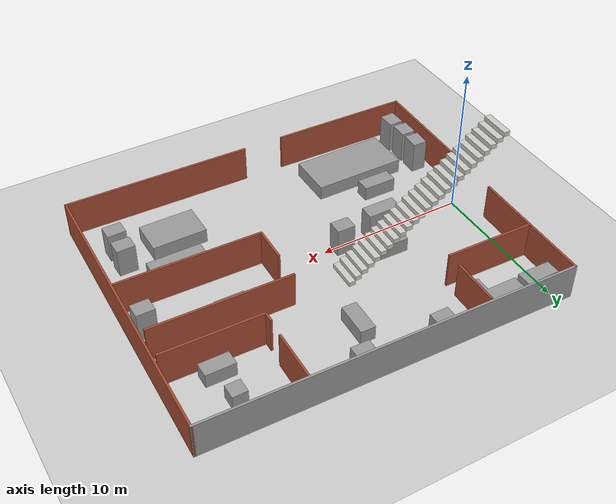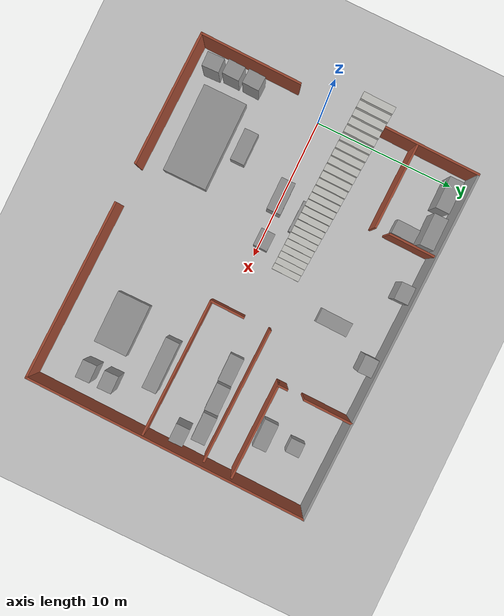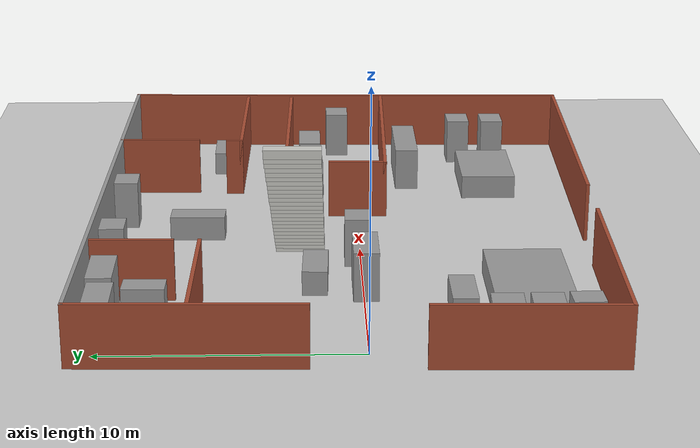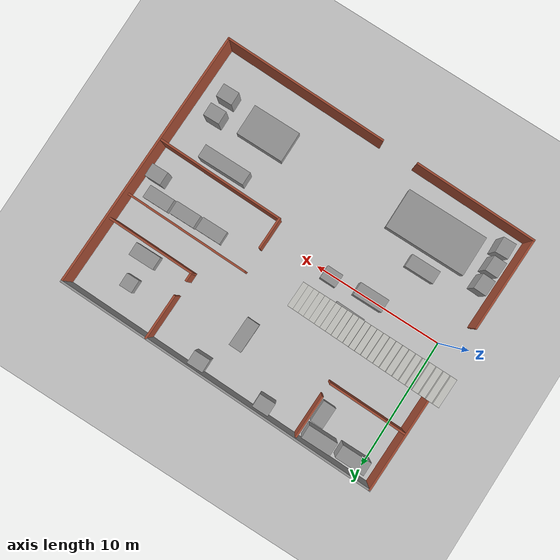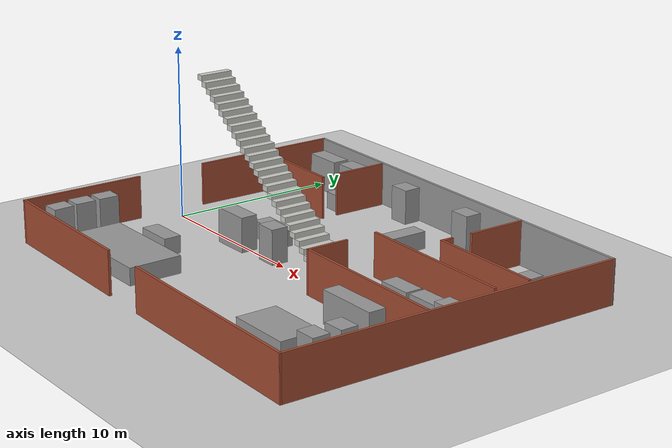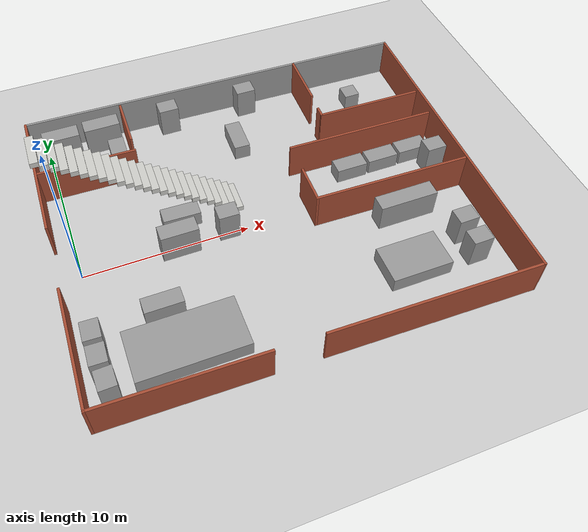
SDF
<sdf version="1.6">
 <world name="default">
  <light name="sun" type="directional">
   <pose>0 0 10 0 -0 0</pose>
   <diffuse>0.8 0.8 0.8 1</diffuse>
   <specular>0.2 0.2 0.2 1</specular>
   <attenuation>
    <range>1000</range>
    <constant>0.9</constant>
    <linear>0.01</linear>
    <quadratic>0.001</quadratic>
   </attenuation>
   <direction>-0.5 0.1 -0.9</direction>
  </light>
  <model name="ground_plane">
   <static>1</static>
   <link name="link">
    <collision name="collision">
     <geometry><plane><normal>0 0 1</normal><size>100 100</size></plane></geometry>
     <surface><friction><ode><mu>100</mu><mu2>50</mu2></ode></friction></surface>
    </collision>
    <visual name="visual">
     <cast_shadows>0</cast_shadows>
     <geometry><plane><normal>0 0 1</normal><size>100 100</size></plane></geometry>
     <material>
      <script><uri>file://media/materials/scripts/gazebo.material</uri><name>Gazebo/Grey</name></script>
     </material>
    </visual>
   </link>
  </model>
  <gravity>0 0 -9.8</gravity>
  <magnetic_field>6e-06 2.3e-05 -4.2e-05</magnetic_field>
  <atmosphere type="adiabatic"/>
  <physics name="default_physics" default="0" type="ode">
   <max_step_size>0.001</max_step_size>
   <real_time_factor>1</real_time_factor>
   <real_time_update_rate>1000</real_time_update_rate>
  </physics>
  <scene><ambient>0.4 0.4 0.4 1</ambient><background>0.7 0.7 0.7 1</background><shadows>1</shadows></scene>
  <spherical_coordinates>
   <surface_model>EARTH_WGS84</surface_model>
   <latitude_deg>0</latitude_deg>
   <longitude_deg>0</longitude_deg>
   <elevation>0</elevation>
   <heading_deg>0</heading_deg>
  </spherical_coordinates>
  <model name="CIMA_LAB">
   <pose>11.2808 0.528104 0 0 0 -1.59296</pose>
   <link name="Stairs_2">
    <visual name="Stairs_2_Visual_0">
     <pose>-1.90803 -1.27666 0.16 0 -0 0</pose>
     <geometry><box><size>2 0.44 0.32</size></box></geometry>
     <material>
      <script><uri>file://media/materials/scripts/gazebo.material</uri><name>Gazebo/CeilingTiled</name></script>
      <ambient>0.760784 0.662745 0.627451 1</ambient>
     </material>
     <meta><layer>0</layer></meta>
    </visual>
    <collision name="Stairs_2_Collision_0">
     <geometry><box><size>2 0.44 0.32</size></box></geometry>
     <pose>-1.90803 -1.27666 0.16 0 -0 0</pose>
    </collision>
    <visual name="Stairs_2_Visual_1">
     <pose>-1.90803 -1.71666 0.48 0 -0 0</pose>
     <geometry><box><size>2 0.44 0.32</size></box></geometry>
     <material>
      <script><uri>file://media/materials/scripts/gazebo.material</uri><name>Gazebo/CeilingTiled</name></script>
      <ambient>0.760784 0.662745 0.627451 1</ambient>
     </material>
     <meta><layer>0</layer></meta>
    </visual>
    <collision name="Stairs_2_Collision_1">
     <geometry><box><size>2 0.44 0.32</size></box></geometry>
     <pose>-1.90803 -1.71666 0.48 0 -0 0</pose>
    </collision>
    <visual name="Stairs_2_Visual_2">
     <pose>-1.90803 -2.15666 0.8 0 -0 0</pose>
     <geometry><box><size>2 0.44 0.32</size></box></geometry>
     <material>
      <script><uri>file://media/materials/scripts/gazebo.material</uri><name>Gazebo/CeilingTiled</name></script>
      <ambient>0.760784 0.662745 0.627451 1</ambient>
     </material>
     <meta><layer>0</layer></meta>
    </visual>
    <collision name="Stairs_2_Collision_2">
     <geometry><box><size>2 0.44 0.32</size></box></geometry>
     <pose>-1.90803 -2.15666 0.8 0 -0 0</pose>
    </collision>
    <visual name="Stairs_2_Visual_3">
     <pose>-1.90803 -2.59666 1.12 0 -0 0</pose>
     <geometry><box><size>2 0.44 0.32</size></box></geometry>
     <material>
      <script><uri>file://media/materials/scripts/gazebo.material</uri><name>Gazebo/CeilingTiled</name></script>
      <ambient>0.760784 0.662745 0.627451 1</ambient>
     </material>
     <meta><layer>0</layer></meta>
    </visual>
    <collision name="Stairs_2_Collision_3">
     <geometry><box><size>2 0.44 0.32</size></box></geometry>
     <pose>-1.90803 -2.59666 1.12 0 -0 0</pose>
    </collision>
    <visual name="Stairs_2_Visual_4">
     <pose>-1.90803 -3.03666 1.44 0 -0 0</pose>
     <geometry><box><size>2 0.44 0.32</size></box></geometry>
     <material>
      <script><uri>file://media/materials/scripts/gazebo.material</uri><name>Gazebo/CeilingTiled</name></script>
      <ambient>0.760784 0.662745 0.627451 1</ambient>
     </material>
     <meta><layer>0</layer></meta>
    </visual>
    <collision name="Stairs_2_Collision_4">
     <geometry><box><size>2 0.44 0.32</size></box></geometry>
     <pose>-1.90803 -3.03666 1.44 0 -0 0</pose>
    </collision>
    <visual name="Stairs_2_Visual_5">
     <pose>-1.90803 -3.47666 1.76 0 -0 0</pose>
     <geometry><box><size>2 0.44 0.32</size></box></geometry>
     <material>
      <script><uri>file://media/materials/scripts/gazebo.material</uri><name>Gazebo/CeilingTiled</name></script>
      <ambient>0.760784 0.662745 0.627451 1</ambient>
     </material>
     <meta><layer>0</layer></meta>
    </visual>
    <collision name="Stairs_2_Collision_5">
     <geometry><box><size>2 0.44 0.32</size></box></geometry>
     <pose>-1.90803 -3.47666 1.76 0 -0 0</pose>
    </collision>
    <visual name="Stairs_2_Visual_6">
     <pose>-1.90803 -3.91666 2.08 0 -0 0</pose>
     <geometry><box><size>2 0.44 0.32</size></box></geometry>
     <material>
      <script><uri>file://media/materials/scripts/gazebo.material</uri><name>Gazebo/CeilingTiled</name></script>
      <ambient>0.760784 0.662745 0.627451 1</ambient>
     </material>
     <meta><layer>0</layer></meta>
    </visual>
    <collision name="Stairs_2_Collision_6">
     <geometry><box><size>2 0.44 0.32</size></box></geometry>
     <pose>-1.90803 -3.91666 2.08 0 -0 0</pose>
    </collision>
    <visual name="Stairs_2_Visual_7">
     <pose>-1.90803 -4.35666 2.4 0 -0 0</pose>
     <geometry><box><size>2 0.44 0.32</size></box></geometry>
     <material>
      <script><uri>file://media/materials/scripts/gazebo.material</uri><name>Gazebo/CeilingTiled</name></script>
      <ambient>0.760784 0.662745 0.627451 1</ambient>
     </material>
     <meta><layer>0</layer></meta>
    </visual>
    <collision name="Stairs_2_Collision_7">
     <geometry><box><size>2 0.44 0.32</size></box></geometry>
     <pose>-1.90803 -4.35666 2.4 0 -0 0</pose>
    </collision>
    <visual name="Stairs_2_Visual_8">
     <pose>-1.90803 -4.79666 2.72 0 -0 0</pose>
     <geometry><box><size>2 0.44 0.32</size></box></geometry>
     <material>
      <script><uri>file://media/materials/scripts/gazebo.material</uri><name>Gazebo/CeilingTiled</name></script>
      <ambient>0.760784 0.662745 0.627451 1</ambient>
     </material>
     <meta><layer>0</layer></meta>
    </visual>
    <collision name="Stairs_2_Collision_8">
     <geometry><box><size>2 0.44 0.32</size></box></geometry>
     <pose>-1.90803 -4.79666 2.72 0 -0 0</pose>
    </collision>
    <visual name="Stairs_2_Visual_9">
     <pose>-1.90803 -5.23666 3.04 0 -0 0</pose>
     <geometry><box><size>2 0.44 0.32</size></box></geometry>
     <material>
      <script><uri>file://media/materials/scripts/gazebo.material</uri><name>Gazebo/CeilingTiled</name></script>
      <ambient>0.760784 0.662745 0.627451 1</ambient>
     </material>
     <meta><layer>0</layer></meta>
    </visual>
    <collision name="Stairs_2_Collision_9">
     <geometry><box><size>2 0.44 0.32</size></box></geometry>
     <pose>-1.90803 -5.23666 3.04 0 -0 0</pose>
    </collision>
    <visual name="Stairs_2_Visual_10">
     <pose>-1.90803 -5.67666 3.36 0 -0 0</pose>
     <geometry><box><size>2 0.44 0.32</size></box></geometry>
     <material>
      <script><uri>file://media/materials/scripts/gazebo.material</uri><name>Gazebo/CeilingTiled</name></script>
      <ambient>0.760784 0.662745 0.627451 1</ambient>
     </material>
     <meta><layer>0</layer></meta>
    </visual>
    <collision name="Stairs_2_Collision_10">
     <geometry><box><size>2 0.44 0.32</size></box></geometry>
     <pose>-1.90803 -5.67666 3.36 0 -0 0</pose>
    </collision>
    <visual name="Stairs_2_Visual_11">
     <pose>-1.90803 -6.11666 3.68 0 -0 0</pose>
     <geometry><box><size>2 0.44 0.32</size></box></geometry>
     <material>
      <script><uri>file://media/materials/scripts/gazebo.material</uri><name>Gazebo/CeilingTiled</name></script>
      <ambient>0.760784 0.662745 0.627451 1</ambient>
     </material>
     <meta><layer>0</layer></meta>
    </visual>
    <collision name="Stairs_2_Collision_11">
     <geometry><box><size>2 0.44 0.32</size></box></geometry>
     <pose>-1.90803 -6.11666 3.68 0 -0 0</pose>
    </collision>
    <visual name="Stairs_2_Visual_12">
     <pose>-1.90803 -6.55666 4 0 -0 0</pose>
     <geometry><box><size>2 0.44 0.32</size></box></geometry>
     <material>
      <script><uri>file://media/materials/scripts/gazebo.material</uri><name>Gazebo/CeilingTiled</name></script>
      <ambient>0.760784 0.662745 0.627451 1</ambient>
     </material>
     <meta><layer>0</layer></meta>
    </visual>
    <collision name="Stairs_2_Collision_12">
     <geometry><box><size>2 0.44 0.32</size></box></geometry>
     <pose>-1.90803 -6.55666 4 0 -0 0</pose>
    </collision>
    <visual name="Stairs_2_Visual_13">
     <pose>-1.90803 -6.99666 4.32 0 -0 0</pose>
     <geometry><box><size>2 0.44 0.32</size></box></geometry>
     <material>
      <script><uri>file://media/materials/scripts/gazebo.material</uri><name>Gazebo/CeilingTiled</name></script>
      <ambient>0.760784 0.662745 0.627451 1</ambient>
     </material>
     <meta><layer>0</layer></meta>
    </visual>
    <collision name="Stairs_2_Collision_13">
     <geometry><box><size>2 0.44 0.32</size></box></geometry>
     <pose>-1.90803 -6.99666 4.32 0 -0 0</pose>
    </collision>
    <visual name="Stairs_2_Visual_14">
     <pose>-1.90803 -7.43666 4.64 0 -0 0</pose>
     <geometry><box><size>2 0.44 0.32</size></box></geometry>
     <material>
      <script><uri>file://media/materials/scripts/gazebo.material</uri><name>Gazebo/CeilingTiled</name></script>
      <ambient>0.760784 0.662745 0.627451 1</ambient>
     </material>
     <meta><layer>0</layer></meta>
    </visual>
    <collision name="Stairs_2_Collision_14">
     <geometry><box><size>2 0.44 0.32</size></box></geometry>
     <pose>-1.90803 -7.43666 4.64 0 -0 0</pose>
    </collision>
    <visual name="Stairs_2_Visual_15">
     <pose>-1.90803 -7.87666 4.96 0 -0 0</pose>
     <geometry><box><size>2 0.44 0.32</size></box></geometry>
     <material>
      <script><uri>file://media/materials/scripts/gazebo.material</uri><name>Gazebo/CeilingTiled</name></script>
      <ambient>0.760784 0.662745 0.627451 1</ambient>
     </material>
     <meta><layer>0</layer></meta>
    </visual>
    <collision name="Stairs_2_Collision_15">
     <geometry><box><size>2 0.44 0.32</size></box></geometry>
     <pose>-1.90803 -7.87666 4.96 0 -0 0</pose>
    </collision>
    <visual name="Stairs_2_Visual_16">
     <pose>-1.90803 -8.31666 5.28 0 -0 0</pose>
     <geometry><box><size>2 0.44 0.32</size></box></geometry>
     <material>
      <script><uri>file://media/materials/scripts/gazebo.material</uri><name>Gazebo/CeilingTiled</name></script>
      <ambient>0.760784 0.662745 0.627451 1</ambient>
     </material>
     <meta><layer>0</layer></meta>
    </visual>
    <collision name="Stairs_2_Collision_16">
     <geometry><box><size>2 0.44 0.32</size></box></geometry>
     <pose>-1.90803 -8.31666 5.28 0 -0 0</pose>
    </collision>
    <visual name="Stairs_2_Visual_17">
     <pose>-1.90803 -8.75666 5.6 0 -0 0</pose>
     <geometry><box><size>2 0.44 0.32</size></box></geometry>
     <material>
      <script><uri>file://media/materials/scripts/gazebo.material</uri><name>Gazebo/CeilingTiled</name></script>
      <ambient>0.760784 0.662745 0.627451 1</ambient>
     </material>
     <meta><layer>0</layer></meta>
    </visual>
    <collision name="Stairs_2_Collision_17">
     <geometry><box><size>2 0.44 0.32</size></box></geometry>
     <pose>-1.90803 -8.75666 5.6 0 -0 0</pose>
    </collision>
    <visual name="Stairs_2_Visual_18">
     <pose>-1.90803 -9.19666 5.92 0 -0 0</pose>
     <geometry><box><size>2 0.44 0.32</size></box></geometry>
     <material>
      <script><uri>file://media/materials/scripts/gazebo.material</uri><name>Gazebo/CeilingTiled</name></script>
      <ambient>0.760784 0.662745 0.627451 1</ambient>
     </material>
     <meta><layer>0</layer></meta>
    </visual>
    <collision name="Stairs_2_Collision_18">
     <geometry><box><size>2 0.44 0.32</size></box></geometry>
     <pose>-1.90803 -9.19666 5.92 0 -0 0</pose>
    </collision>
    <visual name="Stairs_2_Visual_19">
     <pose>-1.90803 -9.63666 6.24 0 -0 0</pose>
     <geometry><box><size>2 0.44 0.32</size></box></geometry>
     <material>
      <script><uri>file://media/materials/scripts/gazebo.material</uri><name>Gazebo/CeilingTiled</name></script>
      <ambient>0.760784 0.662745 0.627451 1</ambient>
     </material>
     <meta><layer>0</layer></meta>
    </visual>
    <collision name="Stairs_2_Collision_19">
     <geometry><box><size>2 0.44 0.32</size></box></geometry>
     <pose>-1.90803 -9.63666 6.24 0 -0 0</pose>
    </collision>
    <visual name="Stairs_2_Visual_20">
     <pose>-1.90803 -10.0767 6.56 0 -0 0</pose>
     <geometry><box><size>2 0.44 0.32</size></box></geometry>
     <material>
      <script><uri>file://media/materials/scripts/gazebo.material</uri><name>Gazebo/CeilingTiled</name></script>
      <ambient>0.760784 0.662745 0.627451 1</ambient>
     </material>
     <meta><layer>0</layer></meta>
    </visual>
    <collision name="Stairs_2_Collision_20">
     <geometry><box><size>2 0.44 0.32</size></box></geometry>
     <pose>-1.90803 -10.0767 6.56 0 -0 0</pose>
    </collision>
    <visual name="Stairs_2_Visual_21">
     <pose>-1.90803 -10.5167 6.88 0 -0 0</pose>
     <geometry><box><size>2 0.44 0.32</size></box></geometry>
     <material>
      <script><uri>file://media/materials/scripts/gazebo.material</uri><name>Gazebo/CeilingTiled</name></script>
      <ambient>0.760784 0.662745 0.627451 1</ambient>
     </material>
     <meta><layer>0</layer></meta>
    </visual>
    <collision name="Stairs_2_Collision_21">
     <geometry><box><size>2 0.44 0.32</size></box></geometry>
     <pose>-1.90803 -10.5167 6.88 0 -0 0</pose>
    </collision>
    <visual name="Stairs_2_Visual_22">
     <pose>-1.90803 -10.9567 7.2 0 -0 0</pose>
     <geometry><box><size>2 0.44 0.32</size></box></geometry>
     <material>
      <script><uri>file://media/materials/scripts/gazebo.material</uri><name>Gazebo/CeilingTiled</name></script>
      <ambient>0.760784 0.662745 0.627451 1</ambient>
     </material>
     <meta><layer>0</layer></meta>
    </visual>
    <collision name="Stairs_2_Collision_22">
     <geometry><box><size>2 0.44 0.32</size></box></geometry>
     <pose>-1.90803 -10.9567 7.2 0 -0 0</pose>
    </collision>
    <visual name="Stairs_2_Visual_23">
     <pose>-1.90803 -11.3967 7.52 0 -0 0</pose>
     <geometry><box><size>2 0.44 0.32</size></box></geometry>
     <material>
      <script><uri>file://media/materials/scripts/gazebo.material</uri><name>Gazebo/CeilingTiled</name></script>
      <ambient>0.760784 0.662745 0.627451 1</ambient>
     </material>
     <meta><layer>0</layer></meta>
    </visual>
    <collision name="Stairs_2_Collision_23">
     <geometry><box><size>2 0.44 0.32</size></box></geometry>
     <pose>-1.90803 -11.3967 7.52 0 -0 0</pose>
    </collision>
    <visual name="Stairs_2_Visual_24">
     <pose>-1.90803 -11.8367 7.84 0 -0 0</pose>
     <geometry><box><size>2 0.44 0.32</size></box></geometry>
     <material>
      <script><uri>file://media/materials/scripts/gazebo.material</uri><name>Gazebo/CeilingTiled</name></script>
      <ambient>0.760784 0.662745 0.627451 1</ambient>
     </material>
     <meta><layer>0</layer></meta>
    </visual>
    <collision name="Stairs_2_Collision_24">
     <geometry><box><size>2 0.44 0.32</size></box></geometry>
     <pose>-1.90803 -11.8367 7.84 0 -0 0</pose>
    </collision>
   </link>
   <link name="Wall_0">
    <collision name="Wall_0_Collision">
     <geometry><box><size>25 0.15 2.5</size></box></geometry>
     <pose>0 0 1.25 0 -0 0</pose>
    </collision>
    <visual name="Wall_0_Visual">
     <pose>0 0 1.25 0 -0 0</pose>
     <geometry><box><size>25 0.15 2.5</size></box></geometry>
     <material>
      <script><uri>file://media/materials/scripts/gazebo.material</uri><name>Gazebo/Grey</name></script>
      <ambient>1 1 1 1</ambient>
     </material>
     <meta><layer>0</layer></meta>
    </visual>
    <pose>-10 0.009925 0 0 -0 -1.5708</pose>
   </link>
   <link name="Wall_15">
    <collision name="Wall_15_Collision">
     <geometry><box><size>0.75 0.15 2.5</size></box></geometry>
     <pose>0 0 1.25 0 -0 0</pose>
    </collision>
    <visual name="Wall_15_Visual">
     <pose>0 0 1.25 0 -0 0</pose>
     <geometry><box><size>0.75 0.15 2.5</size></box></geometry>
     <material>
      <script><uri>file://media/materials/scripts/gazebo.material</uri><name>Gazebo/Bricks</name></script>
      <ambient>1 1 1 1</ambient>
     </material>
     <meta><layer>0</layer></meta>
    </visual>
    <pose>-4.97494 5.50618 0 0 -0 0</pose>
   </link>
   <link name="Wall_16">
    <collision name="Wall_16_Collision">
     <geometry><box><size>6.75 0.15 2.5</size></box></geometry>
     <pose>0 0 1.25 0 -0 0</pose>
    </collision>
    <visual name="Wall_16_Visual">
     <pose>0 0 1.25 0 -0 0</pose>
     <geometry><box><size>6.75 0.15 2.5</size></box></geometry>
     <material>
      <script><uri>file://media/materials/scripts/gazebo.material</uri><name>Gazebo/Bricks</name></script>
      <ambient>1 1 1 1</ambient>
     </material>
     <meta><layer>0</layer></meta>
    </visual>
    <pose>-4.67494 8.80618 0 0 -0 1.5708</pose>
   </link>
   <link name="Wall_18">
    <collision name="Wall_18_Collision">
     <geometry><box><size>3.5 0.15 2.5</size></box></geometry>
     <pose>0 0 1.25 0 -0 0</pose>
    </collision>
    <visual name="Wall_18_Visual">
     <pose>0 0 1.25 0 -0 0</pose>
     <geometry><box><size>3.5 0.15 2.5</size></box></geometry>
     <material>
      <script><uri>file://media/materials/scripts/gazebo.material</uri><name>Gazebo/Bricks</name></script>
      <ambient>1 1 1 1</ambient>
     </material>
     <meta><layer>0</layer></meta>
    </visual>
    <pose>-8.28251 5.57631 0 0 -0 3.14159</pose>
   </link>
   <link name="Wall_2">
    <collision name="Wall_2_Collision">
     <geometry><box><size>12.75 0.15 2.5</size></box></geometry>
     <pose>0 0 1.25 0 -0 0</pose>
    </collision>
    <visual name="Wall_2_Visual">
     <pose>0 0 1.25 0 -0 0</pose>
     <geometry><box><size>12.75 0.15 2.5</size></box></geometry>
     <material>
      <script><uri>file://media/materials/scripts/gazebo.material</uri><name>Gazebo/Bricks</name></script>
      <ambient>1 1 1 1</ambient>
     </material>
     <meta><layer>0</layer></meta>
    </visual>
    <pose>10 6.09492 0 0 -0 1.5708</pose>
   </link>
   <link name="Wall_20">
    <collision name="Wall_20_Collision">
     <geometry><box><size>9.75 0.15 2.5</size></box></geometry>
     <pose>0 0 1.25 0 -0 0</pose>
    </collision>
    <visual name="Wall_20_Visual">
     <pose>0 0 1.25 0 -0 0</pose>
     <geometry><box><size>9.75 0.15 2.5</size></box></geometry>
     <material>
      <script><uri>file://media/materials/scripts/gazebo.material</uri><name>Gazebo/Bricks</name></script>
      <ambient>1 1 1 1</ambient>
     </material>
     <meta><layer>0</layer></meta>
    </visual>
    <pose>1.66843 7.43914 0 0 -0 -1.5708</pose>
   </link>
   <link name="Wall_21">
    <collision name="Wall_21_Collision">
     <geometry><box><size>2.5 0.15 2.5</size></box></geometry>
     <pose>0 0 1.25 0 -0 0</pose>
    </collision>
    <visual name="Wall_21_Visual">
     <pose>0 0 1.25 0 -0 0</pose>
     <geometry><box><size>2.5 0.15 2.5</size></box></geometry>
     <material>
      <script><uri>file://media/materials/scripts/gazebo.material</uri><name>Gazebo/Bricks</name></script>
      <ambient>1 1 1 1</ambient>
     </material>
     <meta><layer>0</layer></meta>
    </visual>
    <pose>0.493428 2.63914 0 0 -0 3.14159</pose>
   </link>
   <link name="Wall_23">
    <collision name="Wall_23_Collision">
     <geometry><box><size>9.5 0.15 2.5</size></box></geometry>
     <pose>0 0 1.25 0 -0 0</pose>
    </collision>
    <visual name="Wall_23_Visual">
     <pose>0 0 1.25 0 -0 0</pose>
     <geometry><box><size>9.5 0.15 2.5</size></box></geometry>
     <material>
      <script><uri>file://media/materials/scripts/gazebo.material</uri><name>Gazebo/Bricks</name></script>
      <ambient>1 1 1 1</ambient>
     </material>
     <meta><layer>0</layer></meta>
    </visual>
    <pose>-2.60981 7.30564 0 0 -0 1.5708</pose>
   </link>
   <link name="Wall_25">
    <collision name="Wall_25_Collision">
     <geometry><box><size>3.25 0.15 2.5</size></box></geometry>
     <pose>0 0 1.25 0 -0 0</pose>
    </collision>
    <visual name="Wall_25_Visual">
     <pose>0 0 1.25 0 -0 0</pose>
     <geometry><box><size>3.25 0.15 2.5</size></box></geometry>
     <material>
      <script><uri>file://media/materials/scripts/gazebo.material</uri><name>Gazebo/Bricks</name></script>
      <ambient>1 1 1 1</ambient>
     </material>
     <meta><layer>0</layer></meta>
    </visual>
    <pose>-8.22765 -6.41678 0 0 -0 3.14159</pose>
   </link>
   <link name="Wall_27">
    <collision name="Wall_27_Collision">
     <geometry><box><size>6 0.15 2.5</size></box></geometry>
     <pose>0 0 1.25 0 -0 0</pose>
    </collision>
    <visual name="Wall_27_Visual">
     <pose>0 0 1.25 0 -0 0</pose>
     <geometry><box><size>6 0.15 2.5</size></box></geometry>
     <material>
      <script><uri>file://media/materials/scripts/gazebo.material</uri><name>Gazebo/Bricks</name></script>
      <ambient>1 1 1 1</ambient>
     </material>
     <meta><layer>0</layer></meta>
    </visual>
    <pose>-5.62562 -9.34178 0 0 -0 -1.5708</pose>
   </link>
   <link name="Wall_3">
    <collision name="Wall_3_Collision">
     <geometry><box><size>20.15 0.15 2.5</size></box></geometry>
     <pose>0 0 1.25 0 -0 0</pose>
    </collision>
    <visual name="Wall_3_Visual">
     <pose>0 0 1.25 0 -0 0</pose>
     <geometry><box><size>20.15 0.15 2.5</size></box></geometry>
     <material>
      <script><uri>file://media/materials/scripts/gazebo.material</uri><name>Gazebo/Bricks</name></script>
      <ambient>1 1 1 1</ambient>
     </material>
     <meta><layer>0</layer></meta>
    </visual>
    <pose>0 12.4149 0 0 -0 3.13959</pose>
   </link>
   <link name="Wall_4">
    <collision name="Wall_4_Collision">
     <geometry><box><size>25 0.15 2.5</size></box></geometry>
     <pose>0 0 1.25 0 -0 0</pose>
    </collision>
    <visual name="Wall_4_Visual">
     <pose>0 0 1.25 0 -0 0</pose>
     <geometry><box><size>25 0.15 2.5</size></box></geometry>
     <material>
      <script><uri>file://media/materials/scripts/gazebo.material</uri><name>Gazebo/Bricks</name></script>
      <ambient>1 1 1 1</ambient>
     </material>
     <meta><layer>0</layer></meta>
    </visual>
    <pose>-10 0.009925 0 0 -0 -1.5708</pose>
   </link>
   <link name="Wall_5">
    <collision name="Wall_5_Collision">
     <geometry><box><size>8.75 0.15 2.5</size></box></geometry>
     <pose>0 0 1.25 0 -0 0</pose>
    </collision>
    <visual name="Wall_5_Visual">
     <pose>0 0 1.25 0 -0 0</pose>
     <geometry><box><size>8.75 0.15 2.5</size></box></geometry>
     <material>
      <script><uri>file://media/materials/scripts/gazebo.material</uri><name>Gazebo/Bricks</name></script>
      <ambient>1 1 1 1</ambient>
     </material>
     <meta><layer>0</layer></meta>
    </visual>
    <pose>-5.7 -12.4151 0 0 -0 0</pose>
   </link>
   <link name="Wall_7">
    <collision name="Wall_7_Collision">
     <geometry><box><size>9.5 0.15 2.5</size></box></geometry>
     <pose>0 0 1.25 0 -0 0</pose>
    </collision>
    <visual name="Wall_7_Visual">
     <pose>0 0 1.25 0 -0 0</pose>
     <geometry><box><size>9.5 0.15 2.5</size></box></geometry>
     <material>
      <script><uri>file://media/materials/scripts/gazebo.material</uri><name>Gazebo/Bricks</name></script>
      <ambient>1 1 1 1</ambient>
     </material>
     <meta><layer>0</layer></meta>
    </visual>
    <pose>10 -7.76007 0 0 -0 -1.5708</pose>
   </link>
   <link name="Wall_8">
    <collision name="Wall_8_Collision">
     <geometry><box><size>7.25 0.15 2.5</size></box></geometry>
     <pose>0 0 1.25 0 -0 0</pose>
    </collision>
    <visual name="Wall_8_Visual">
     <pose>0 0 1.25 0 -0 0</pose>
     <geometry><box><size>7.25 0.15 2.5</size></box></geometry>
     <material>
      <script><uri>file://media/materials/scripts/gazebo.material</uri><name>Gazebo/Bricks</name></script>
      <ambient>1 1 1 1</ambient>
     </material>
     <meta><layer>0</layer></meta>
    </visual>
    <pose>6.45 -12.4351 0 0 -0 3.14159</pose>
   </link>
   <static>1</static>
  </model>
  <model name="unit_box">
   <pose>-0.085318 -7.7763 1.12136 1e-06 1e-06 0.027478</pose>
   <link name="link">
    <inertial>
     <mass>1</mass>
     <inertia>
      <ixx>0.166667</ixx>
      <ixy>0</ixy>
      <ixz>0</ixz>
      <iyy>0.166667</iyy>
      <iyz>0</iyz>
      <izz>0.166667</izz>
     </inertia>
    </inertial>
    <collision name="collision"><geometry><box><size>1 1.18851 2.24273</size></box></geometry></collision>
    <visual name="visual">
     <geometry><box><size>1 1.18851 2.24273</size></box></geometry>
     <material>
      <script><name>Gazebo/Grey</name><uri>file://media/materials/scripts/gazebo.material</uri></script>
     </material>
    </visual>
   </link>
  </model>
  <model name="unit_box_clone">
   <pose>-0.193541 -6.34373 1.12136 1e-06 -1e-06 -0.026576</pose>
   <link name="link">
    <inertial>
     <mass>1</mass>
     <inertia>
      <ixx>0.166667</ixx>
      <ixy>0</ixy>
      <ixz>0</ixz>
      <iyy>0.166667</iyy>
      <iyz>0</iyz>
      <izz>0.166667</izz>
     </inertia>
    </inertial>
    <collision name="collision"><geometry><box><size>1 1.18851 2.24273</size></box></geometry></collision>
    <visual name="visual">
     <geometry><box><size>1 1.18851 2.24273</size></box></geometry>
     <material>
      <script><name>Gazebo/Grey</name><uri>file://media/materials/scripts/gazebo.material</uri></script>
     </material>
    </visual>
   </link>
  </model>
  <model name="unit_box_clone_0">
   <pose>-0.18857 -4.89587 1.12136 -3e-06 -1e-06 -0.035008</pose>
   <link name="link">
    <inertial>
     <mass>1</mass>
     <inertia>
      <ixx>0.166667</ixx>
      <ixy>0</ixy>
      <ixz>0</ixz>
      <iyy>0.166667</iyy>
      <iyz>0</iyz>
      <izz>0.166667</izz>
     </inertia>
    </inertial>
    <collision name="collision"><geometry><box><size>1 1.18851 2.24273</size></box></geometry></collision>
    <visual name="visual">
     <geometry><box><size>1 1.18851 2.24273</size></box></geometry>
     <material>
      <script><name>Gazebo/Grey</name><uri>file://media/materials/scripts/gazebo.material</uri></script>
     </material>
    </visual>
   </link>
  </model>
  <model name="unit_box_0">
   <pose>4.32508 -6.35928 0.5 -2e-06 -0 -8.3e-05</pose>
   <link name="link">
    <inertial>
     <mass>1</mass>
     <inertia>
      <ixx>0.166667</ixx>
      <ixy>0</ixy>
      <ixz>0</ixz>
      <iyy>0.166667</iyy>
      <iyz>0</iyz>
      <izz>0.166667</izz>
     </inertia>
    </inertial>
    <collision name="collision"><geometry><box><size>6.30794 3.10988 1</size></box></geometry></collision>
    <visual name="visual">
     <geometry><box><size>6.30794 3.10988 1</size></box></geometry>
     <material>
      <script><name>Gazebo/Grey</name><uri>file://media/materials/scripts/gazebo.material</uri></script>
     </material>
    </visual>
   </link>
  </model>
  <model name="unit_box_1">
   <pose>3.7622 -3.70466 0.5 0 0 -2.2e-05</pose>
   <link name="link">
    <inertial>
     <mass>1</mass>
     <inertia>
      <ixx>0.166667</ixx>
      <ixy>0</ixy>
      <ixz>0</ixz>
      <iyy>0.166667</iyy>
      <iyz>0</iyz>
      <izz>0.166667</izz>
     </inertia>
    </inertial>
    <collision name="collision"><geometry><box><size>2.2745 1 1</size></box></geometry></collision>
    <visual name="visual">
     <geometry><box><size>2.2745 1 1</size></box></geometry>
     <material>
      <script><name>Gazebo/Grey</name><uri>file://media/materials/scripts/gazebo.material</uri></script>
     </material>
    </visual>
   </link>
  </model>
  <model name="unit_box_2">
   <pose>8.8118 0.174254 1.00316 1e-06 1e-06 -0.017425</pose>
   <link name="link">
    <inertial>
     <mass>1</mass>
     <inertia>
      <ixx>0.166667</ixx>
      <ixy>0</ixy>
      <ixz>0</ixz>
      <iyy>0.166667</iyy>
      <iyz>0</iyz>
      <izz>0.166667</izz>
     </inertia>
    </inertial>
    <collision name="collision"><geometry><box><size>1.23724 1 2.00631</size></box></geometry></collision>
    <visual name="visual">
     <geometry><box><size>1.23724 1 2.00631</size></box></geometry>
     <material>
      <script><name>Gazebo/Grey</name><uri>file://media/materials/scripts/gazebo.material</uri></script>
     </material>
    </visual>
   </link>
  </model>
  <model name="unit_box_2_clone">
   <pose>5.78605 -0.068422 1.00316 0 0 -0.00012</pose>
   <link name="link">
    <inertial>
     <mass>1</mass>
     <inertia>
      <ixx>0.166667</ixx>
      <ixy>0</ixy>
      <ixz>0</ixz>
      <iyy>0.166667</iyy>
      <iyz>0</iyz>
      <izz>0.166667</izz>
     </inertia>
    </inertial>
    <collision name="collision"><geometry><box><size>2.25873 1 2.00631</size></box></geometry></collision>
    <visual name="visual">
     <geometry><box><size>2.25873 1 2.00631</size></box></geometry>
     <material>
      <script><name>Gazebo/Grey</name><uri>file://media/materials/scripts/gazebo.material</uri></script>
     </material>
    </visual>
   </link>
  </model>
  <model name="unit_box_3">
   <pose>19.1233 -2.34065 0.909811 0 -0.000118 -0.000777</pose>
   <link name="link">
    <inertial>
     <mass>1</mass>
     <inertia>
      <ixx>0.166667</ixx>
      <ixy>0</ixy>
      <ixz>0</ixz>
      <iyy>0.166667</iyy>
      <iyz>0</iyz>
      <izz>0.166667</izz>
     </inertia>
    </inertial>
    <collision name="collision"><geometry><box><size>3.63346 1 1.82005</size></box></geometry></collision>
    <visual name="visual">
     <geometry><box><size>3.63346 1 1.82005</size></box></geometry>
     <material>
      <script><name>Gazebo/Grey</name><uri>file://media/materials/scripts/gazebo.material</uri></script>
     </material>
    </visual>
   </link>
  </model>
  <model name="unit_box_2_clone_0">
   <pose>21.5557 -4.95545 1.00316 -1e-06 1e-06 0.012182</pose>
   <link name="link">
    <inertial>
     <mass>1</mass>
     <inertia>
      <ixx>0.166667</ixx>
      <ixy>0</ixy>
      <ixz>0</ixz>
      <iyy>0.166667</iyy>
      <iyz>0</iyz>
      <izz>0.166667</izz>
     </inertia>
    </inertial>
    <collision name="collision"><geometry><box><size>1.23724 1 2.00631</size></box></geometry></collision>
    <visual name="visual">
     <geometry><box><size>1.23724 1 2.00631</size></box></geometry>
     <material>
      <script><name>Gazebo/Grey</name><uri>file://media/materials/scripts/gazebo.material</uri></script>
     </material>
    </visual>
   </link>
  </model>
  <model name="unit_box_2_clone_1">
   <pose>21.5289 -6.53342 1.00315 -1e-06 -4e-06 0.013632</pose>
   <link name="link">
    <inertial>
     <mass>1</mass>
     <inertia>
      <ixx>0.166667</ixx>
      <ixy>0</ixy>
      <ixz>0</ixz>
      <iyy>0.166667</iyy>
      <iyz>0</iyz>
      <izz>0.166667</izz>
     </inertia>
    </inertial>
    <collision name="collision"><geometry><box><size>1.23724 1 2.00631</size></box></geometry></collision>
    <visual name="visual">
     <geometry><box><size>1.23724 1 2.00631</size></box></geometry>
     <material>
      <script><name>Gazebo/Grey</name><uri>file://media/materials/scripts/gazebo.material</uri></script>
     </material>
    </visual>
   </link>
  </model>
  <model name="unit_box_4">
   <pose>17.8766 -5.92104 0.499956 3.7e-05 -0 0</pose>
   <link name="link">
    <inertial>
     <mass>1</mass>
     <inertia>
      <ixx>0.166667</ixx>
      <ixy>0</ixy>
      <ixz>0</ixz>
      <iyy>0.166667</iyy>
      <iyz>0</iyz>
      <izz>0.166667</izz>
     </inertia>
    </inertial>
    <collision name="collision"><geometry><box><size>3.68897 2.35293 1</size></box></geometry></collision>
    <visual name="visual">
     <geometry><box><size>3.68897 2.35293 1</size></box></geometry>
     <material>
      <script><name>Gazebo/Grey</name><uri>file://media/materials/scripts/gazebo.material</uri></script>
     </material>
    </visual>
   </link>
  </model>
  <model name="unit_box_5">
   <pose>20.3177 8.01527 0.499995 0 -1e-05 0</pose>
   <link name="link">
    <inertial>
     <mass>1</mass>
     <inertia>
      <ixx>0.166667</ixx>
      <ixy>0</ixy>
      <ixz>0</ixz>
      <iyy>0.166667</iyy>
      <iyz>0</iyz>
      <izz>0.166667</izz>
     </inertia>
    </inertial>
    <collision name="collision"><geometry><box><size>1 1 1</size></box></geometry></collision>
    <visual name="visual">
     <geometry><box><size>1 1 1</size></box></geometry>
     <material>
      <script><name>Gazebo/Grey</name><uri>file://media/materials/scripts/gazebo.material</uri></script>
     </material>
    </visual>
   </link>
  </model>
  <model name="unit_box_6">
   <pose>20.4405 5.88736 0.499995 -5e-06 2e-06 -1.6e-05</pose>
   <link name="link">
    <inertial>
     <mass>1</mass>
     <inertia>
      <ixx>0.166667</ixx>
      <ixy>0</ixy>
      <ixz>0</ixz>
      <iyy>0.166667</iyy>
      <iyz>0</iyz>
      <izz>0.166667</izz>
     </inertia>
    </inertial>
    <collision name="collision"><geometry><box><size>1.97954 1 1</size></box></geometry></collision>
    <visual name="visual">
     <geometry><box><size>1.97954 1 1</size></box></geometry>
     <material>
      <script><name>Gazebo/Grey</name><uri>file://media/materials/scripts/gazebo.material</uri></script>
     </material>
    </visual>
   </link>
  </model>
  <model name="unit_box_2_clone_2">
   <pose>22.6418 0.718173 1.00315 1e-06 4e-06 0.003419</pose>
   <link name="link">
    <inertial>
     <mass>1</mass>
     <inertia>
      <ixx>0.166667</ixx>
      <ixy>0</ixy>
      <ixz>0</ixz>
      <iyy>0.166667</iyy>
      <iyz>0</iyz>
      <izz>0.166667</izz>
     </inertia>
    </inertial>
    <collision name="collision"><geometry><box><size>1.23724 1 2.00631</size></box></geometry></collision>
    <visual name="visual">
     <geometry><box><size>1.23724 1 2.00631</size></box></geometry>
     <material>
      <script><name>Gazebo/Grey</name><uri>file://media/materials/scripts/gazebo.material</uri></script>
     </material>
    </visual>
   </link>
  </model>
  <model name="unit_box_6_clone">
   <pose>21.8093 2.01499 0.499995 -5e-06 -2e-06 1.6e-05</pose>
   <link name="link">
    <inertial>
     <mass>1</mass>
     <inertia>
      <ixx>0.166667</ixx>
      <ixy>0</ixy>
      <ixz>0</ixz>
      <iyy>0.166667</iyy>
      <iyz>0</iyz>
      <izz>0.166667</izz>
     </inertia>
    </inertial>
    <collision name="collision"><geometry><box><size>1.97954 1 1</size></box></geometry></collision>
    <visual name="visual">
     <geometry><box><size>1.97954 1 1</size></box></geometry>
     <material>
      <script><name>Gazebo/Grey</name><uri>file://media/materials/scripts/gazebo.material</uri></script>
     </material>
    </visual>
   </link>
  </model>
  <model name="unit_box_6_clone_clone">
   <pose>19.6572 1.96666 0.499995 -5e-06 2e-06 -2.1e-05</pose>
   <link name="link">
    <inertial>
     <mass>1</mass>
     <inertia>
      <ixx>0.166667</ixx>
      <ixy>0</ixy>
      <ixz>0</ixz>
      <iyy>0.166667</iyy>
      <iyz>0</iyz>
      <izz>0.166667</izz>
     </inertia>
    </inertial>
    <collision name="collision"><geometry><box><size>1.97954 1 1</size></box></geometry></collision>
    <visual name="visual">
     <geometry><box><size>1.97954 1 1</size></box></geometry>
     <material>
      <script><name>Gazebo/Grey</name><uri>file://media/materials/scripts/gazebo.material</uri></script>
     </material>
    </visual>
   </link>
  </model>
  <model name="unit_box_6_clone_clone_0">
   <pose>17.5065 1.92715 0.499995 -5e-06 -3e-06 -2.1e-05</pose>
   <link name="link">
    <inertial>
     <mass>1</mass>
     <inertia>
      <ixx>0.166667</ixx>
      <ixy>0</ixy>
      <ixz>0</ixz>
      <iyy>0.166667</iyy>
      <iyz>0</iyz>
      <izz>0.166667</izz>
     </inertia>
    </inertial>
    <collision name="collision"><geometry><box><size>1.97954 1 1</size></box></geometry></collision>
    <visual name="visual">
     <geometry><box><size>1.97954 1 1</size></box></geometry>
     <material>
      <script><name>Gazebo/Grey</name><uri>file://media/materials/scripts/gazebo.material</uri></script>
     </material>
    </visual>
   </link>
  </model>
  <model name="unit_box_2_clone_3">
   <pose>13.2904 9.84529 1.00315 1e-06 4e-06 0.001081</pose>
   <link name="link">
    <inertial>
     <mass>1</mass>
     <inertia>
      <ixx>0.166667</ixx>
      <ixy>0</ixy>
      <ixz>0</ixz>
      <iyy>0.166667</iyy>
      <iyz>0</iyz>
      <izz>0.166667</izz>
     </inertia>
    </inertial>
    <collision name="collision"><geometry><box><size>1.23724 1 2.00631</size></box></geometry></collision>
    <visual name="visual">
     <geometry><box><size>1.23724 1 2.00631</size></box></geometry>
     <material>
      <script><name>Gazebo/Grey</name><uri>file://media/materials/scripts/gazebo.material</uri></script>
     </material>
    </visual>
   </link>
  </model>
  <model name="unit_box_2_clone_4">
   <pose>7.99891 9.92852 1.00316 -1e-06 -1e-06 0.00061</pose>
   <link name="link">
    <inertial>
     <mass>1</mass>
     <inertia>
      <ixx>0.166667</ixx>
      <ixy>0</ixy>
      <ixz>0</ixz>
      <iyy>0.166667</iyy>
      <iyz>0</iyz>
      <izz>0.166667</izz>
     </inertia>
    </inertial>
    <collision name="collision"><geometry><box><size>1.23724 1 2.00631</size></box></geometry></collision>
    <visual name="visual">
     <geometry><box><size>1.23724 1 2.00631</size></box></geometry>
     <material>
      <script><name>Gazebo/Grey</name><uri>file://media/materials/scripts/gazebo.material</uri></script>
     </material>
    </visual>
   </link>
  </model>
  <model name="unit_box_1_clone">
   <pose>11.7018 6.74576 0.499995 9e-06 -0 1.54305</pose>
   <link name="link">
    <inertial>
     <mass>1</mass>
     <inertia>
      <ixx>0.166667</ixx>
      <ixy>0</ixy>
      <ixz>0</ixz>
      <iyy>0.166667</iyy>
      <iyz>0</iyz>
      <izz>0.166667</izz>
     </inertia>
    </inertial>
    <collision name="collision"><geometry><box><size>2.2745 1 1</size></box></geometry></collision>
    <visual name="visual">
     <geometry><box><size>2.2745 1 1</size></box></geometry>
     <material>
      <script><name>Gazebo/Grey</name><uri>file://media/materials/scripts/gazebo.material</uri></script>
     </material>
    </visual>
   </link>
  </model>
  <model name="unit_box_2_clone_clone">
   <pose>3.58235 9.90423 1.00316 -0 -0 -0.000118</pose>
   <link name="link">
    <inertial>
     <mass>1</mass>
     <inertia>
      <ixx>0.166667</ixx>
      <ixy>0</ixy>
      <ixz>0</ixz>
      <iyy>0.166667</iyy>
      <iyz>0</iyz>
      <izz>0.166667</izz>
     </inertia>
    </inertial>
    <collision name="collision"><geometry><box><size>2.25873 1 2.00631</size></box></geometry></collision>
    <visual name="visual">
     <geometry><box><size>2.25873 1 2.00631</size></box></geometry>
     <material>
      <script><name>Gazebo/Grey</name><uri>file://media/materials/scripts/gazebo.material</uri></script>
     </material>
    </visual>
   </link>
  </model>
  <model name="unit_box_2_clone_clone_0">
   <pose>0.974662 9.78944 1.00316 0 -0 -0.000107</pose>
   <link name="link">
    <inertial>
     <mass>1</mass>
     <inertia>
      <ixx>0.166667</ixx>
      <ixy>0</ixy>
      <ixz>0</ixz>
      <iyy>0.166667</iyy>
      <iyz>0</iyz>
      <izz>0.166667</izz>
     </inertia>
    </inertial>
    <collision name="collision"><geometry><box><size>2.25873 1 2.00631</size></box></geometry></collision>
    <visual name="visual">
     <geometry><box><size>2.25873 1 2.00631</size></box></geometry>
     <material>
      <script><name>Gazebo/Grey</name><uri>file://media/materials/scripts/gazebo.material</uri></script>
     </material>
    </visual>
   </link>
  </model>
  <model name="unit_box_1_clone_clone">
   <pose>4.19765 8.41268 0.499995 -1e-05 -0 1.54331</pose>
   <link name="link">
    <inertial>
     <mass>1</mass>
     <inertia>
      <ixx>0.166667</ixx>
      <ixy>0</ixy>
      <ixz>0</ixz>
      <iyy>0.166667</iyy>
      <iyz>0</iyz>
      <izz>0.166667</izz>
     </inertia>
    </inertial>
    <collision name="collision"><geometry><box><size>1.66485 1 1</size></box></geometry></collision>
    <visual name="visual">
     <geometry><box><size>1.66485 1 1</size></box></geometry>
     <material>
      <script><name>Gazebo/Grey</name><uri>file://media/materials/scripts/gazebo.material</uri></script>
     </material>
    </visual>
   </link>
  </model>
  <model name="unit_box_1_clone_clone_0">
   <pose>6.42744 1.87786 0.499993 4e-06 5e-06 -0.027825</pose>
   <link name="link">
    <inertial>
     <mass>1</mass>
     <inertia>
      <ixx>0.166667</ixx>
      <ixy>0</ixy>
      <ixz>0</ixz>
      <iyy>0.166667</iyy>
      <iyz>0</iyz>
      <izz>0.166667</izz>
     </inertia>
    </inertial>
    <collision name="collision"><geometry><box><size>2.2745 1 1</size></box></geometry></collision>
    <visual name="visual">
     <geometry><box><size>2.2745 1 1</size></box></geometry>
     <material>
      <script><name>Gazebo/Grey</name><uri>file://media/materials/scripts/gazebo.material</uri></script>
     </material>
    </visual>
   </link>
  </model>
 </world>
</sdf>
